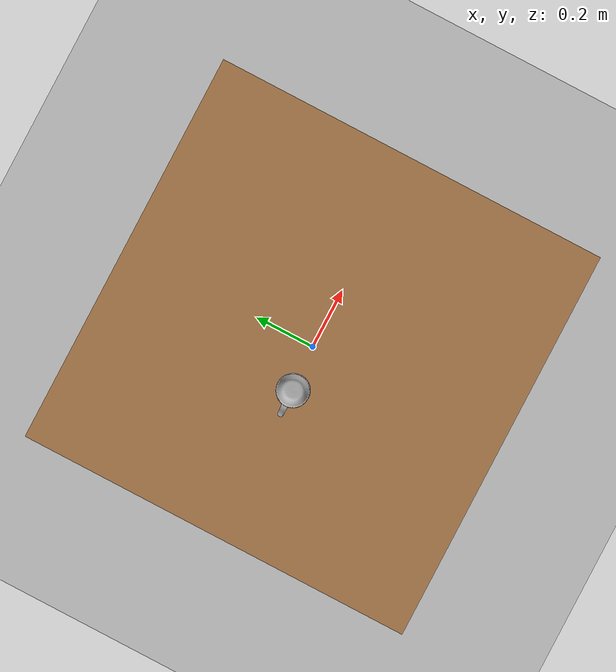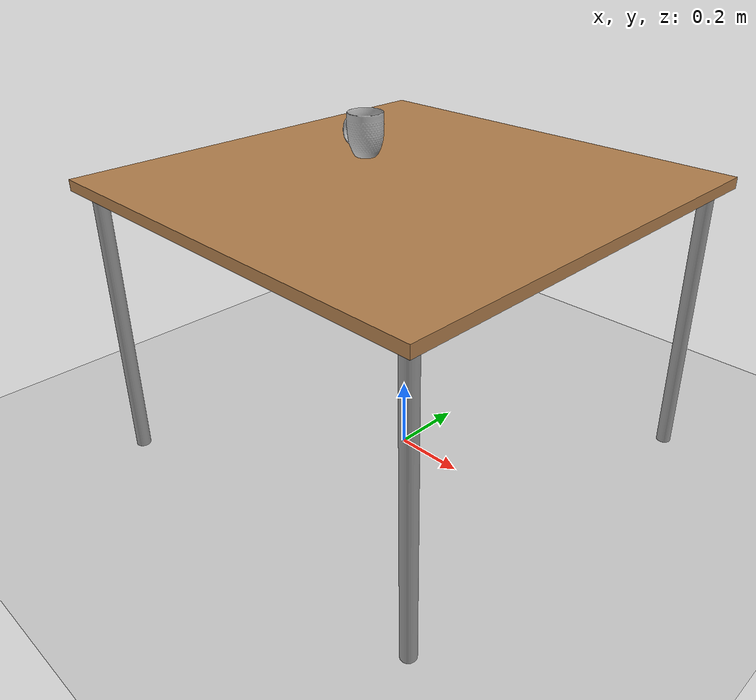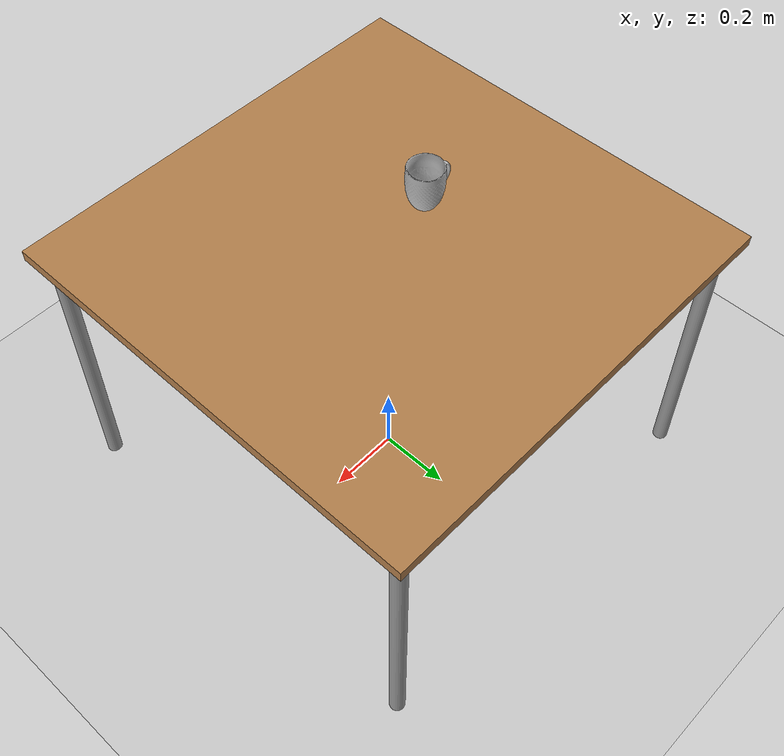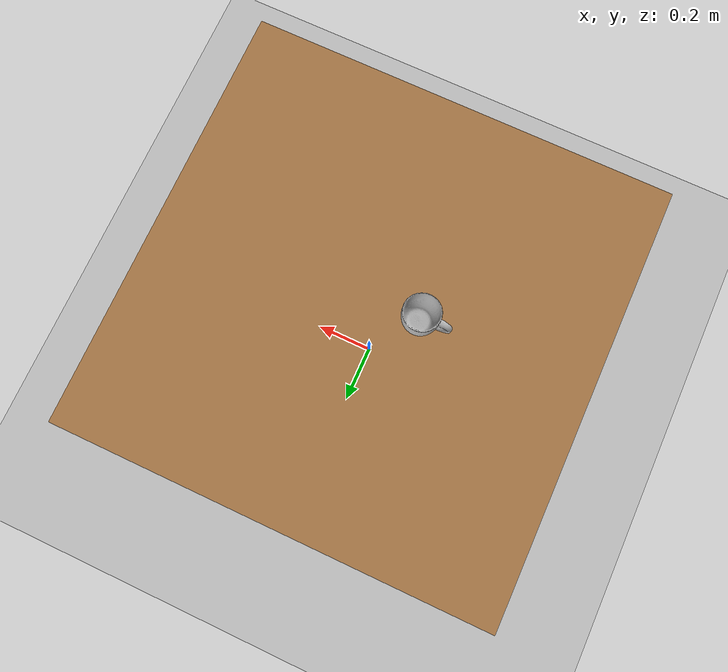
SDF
<sdf version="1.7">
 <world name="default">
  <gravity>0 0 -9.8</gravity>
  <magnetic_field>6e-06 2.3e-05 -4.2e-05</magnetic_field>
  <atmosphere type="adiabatic"/>
  <max_contacts>100</max_contacts>
  <physics type="ode">
   <max_step_size>0.001</max_step_size>
   <real_time_factor>1</real_time_factor>
   <real_time_update_rate>1000</real_time_update_rate>
   <constraints>
    <cfm>0.2</cfm>
    <erp>0.2</erp>
    <contact_max_correcting_vel>10s</contact_max_correcting_vel>
    <contact_surface_layer>0.0001</contact_surface_layer>
   </constraints>
  </physics>
  <scene><ambient>0.4 0.4 0.4 1</ambient><background>0.7 0.7 0.7 1</background><shadows>1</shadows></scene>
  <spherical_coordinates>
   <surface_model>EARTH_WGS84</surface_model>
   <latitude_deg>0</latitude_deg>
   <longitude_deg>0</longitude_deg>
   <elevation>0</elevation>
   <heading_deg>0</heading_deg>
  </spherical_coordinates>
  <include><uri>model://ground_plane</uri></include>
  <include><uri>model://sun</uri></include>
  <include><uri>model://Table</uri><name>table</name><static>1</static></include>
  <model name="white_porcelain_mug">
   <link name="link">
    <inertial>
     <pose>0.00993 -0.001884 0.062737 -2.92273 0.010142 1.56594</pose>
     <mass>0.1</mass>
     <inertia>
      <ixx>0.000169807</ixx>
      <ixy>7.81717e-21</ixy>
      <ixz>-7.57691e-21</ixz>
      <iyy>0.000139509</iyy>
      <iyz>1.08433e-20</iyz>
      <izz>0.00012671</izz>
     </inertia>
    </inertial>
    <collision name="collision">
     <geometry>
      <mesh>
       <scale>1 1 1</scale>
       <uri>model://Threshold_Porcelain_Coffee_Mug_All_Over_Bead_White/meshes/model.obj</uri>
      </mesh>
     </geometry>
     <surface>
      <friction>
       <ode><mu>10</mu><mu2>10</mu2></ode>
       <torsional>
        <coefficient>10</coefficient>
        <use_patch_radius>1</use_patch_radius>
        <patch_radius>0.1</patch_radius>
       </torsional>
      </friction>
      <contact><ode><max_vel>0.001</max_vel><min_depth>0.001</min_depth></ode></contact>
     </surface>
    </collision>
    <visual name="visual">
     <geometry>
      <mesh>
       <scale>1 1 1</scale>
       <uri>model://Threshold_Porcelain_Coffee_Mug_All_Over_Bead_White/meshes/model.obj</uri>
      </mesh>
     </geometry>
    </visual>
   </link>
   <pose>-0.148098 -0.006508 0.84773 -0.005434 -0.008147 4.6e-05</pose>
  </model>
 </world>
</sdf>

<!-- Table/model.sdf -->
<sdf version="1.5">
  <model name="Table">
    <static>true</static>
    <link name="link">
      <gravity>1</gravity>
      <inertial>
        <mass>10.0</mass>
      </inertial>
      <collision name="surface">
        <pose>0 0 0.8 0 0 0</pose>
        <geometry>
          <box>
            <size>1.2 1.2 0.03</size>
          </box>
        </geometry>
        <surface>
          <friction>
            <ode>
              <mu>0.8</mu>
              <mu2>0.6</mu2>
            </ode>
          </friction>
        </surface>
      </collision>
      <visual name="visual1">
        <pose>0 0 0.8 0 0 0</pose>
        <geometry>
          <box>
            <size>1.2 1.2 0.03</size>
          </box>
        </geometry>
        <material>
          <diffuse>1.0 1.0 1.0</diffuse>
          <script>
            <uri>file://media/materials/scripts/gazebo.material</uri>
            <name>Gazebo/Wood</name>
          </script>
          <!-- PBR for Ignition, material scripts for gazebo classic-->
          <pbr>
            <metal>
              <albedo_map>model://Table/Table_Diffuse.jpg</albedo_map>
            </metal>
          </pbr>
        </material>
      </visual>
      <collision name="front_left_leg">
        <pose>0.55 0.55 0.4 0 0 0</pose>
        <geometry>
          <cylinder>
            <radius>0.02</radius>
            <length>0.8</length>
          </cylinder>
        </geometry>
      </collision>
      <visual name="front_left_leg_visual">
        <pose>0.55 0.55 0.4 0 0 0</pose>
        <geometry>
          <cylinder>
            <radius>0.02</radius>
            <length>0.8</length>
          </cylinder>
        </geometry>
        <material>
          <diffuse>0.5 0.5 0.5</diffuse>
          <script>
            <uri>file://media/materials/scripts/gazebo.material</uri>
            <name>Gazebo/Grey</name>
          </script>
        </material>
      </visual>
      <collision name="front_right_leg">
        <pose>0.55 -0.55 0.4 0 0 0</pose>
        <geometry>
          <cylinder>
            <radius>0.02</radius>
            <length>0.8</length>
          </cylinder>
        </geometry>
      </collision>
      <visual name="front_right_leg_visual">
        <pose>0.55 -0.55 0.4 0 0 0</pose>
        <geometry>
          <cylinder>
            <radius>0.02</radius>
            <length>0.8</length>
          </cylinder>
        </geometry>
        <material>
          <diffuse>0.5 0.5 0.5</diffuse>
          <script>
            <uri>file://media/materials/scripts/gazebo.material</uri>
            <name>Gazebo/Grey</name>
          </script>
        </material>
      </visual>
      <collision name="back_right_leg">
        <pose>-0.55 -0.55 0.4 0 0 0</pose>
        <geometry>
          <cylinder>
            <radius>0.02</radius>
            <length>0.8</length>
          </cylinder>
        </geometry>
      </collision>
      <visual name="back_right_leg_visual">
        <pose>-0.55 -0.55 0.4 0 0 0</pose>
        <geometry>
          <cylinder>
            <radius>0.02</radius>
            <length>0.8</length>
          </cylinder>
        </geometry>
        <material>
          <diffuse>0.5 0.5 0.5</diffuse>
          <script>
            <uri>file://media/materials/scripts/gazebo.material</uri>
            <name>Gazebo/Grey</name>
          </script>
        </material>
      </visual>
      <collision name="back_left_leg">
        <pose>-0.55 0.55 0.4 0 0 0</pose>
        <geometry>
          <cylinder>
            <radius>0.02</radius>
            <length>0.8</length>
          </cylinder>
        </geometry>
      </collision>
      <visual name="back_left_leg_visual">
        <pose>-0.55 0.55 0.4 0 0 0</pose>
        <geometry>
          <cylinder>
            <radius>0.02</radius>
            <length>0.8</length>
          </cylinder>
        </geometry>
        <material>
          <diffuse>0.5 0.5 0.5</diffuse>
          <script>
            <uri>file://media/materials/scripts/gazebo.material</uri>
            <name>Gazebo/Grey</name>
          </script>
        </material>
      </visual>
    </link>
  </model>
</sdf>
